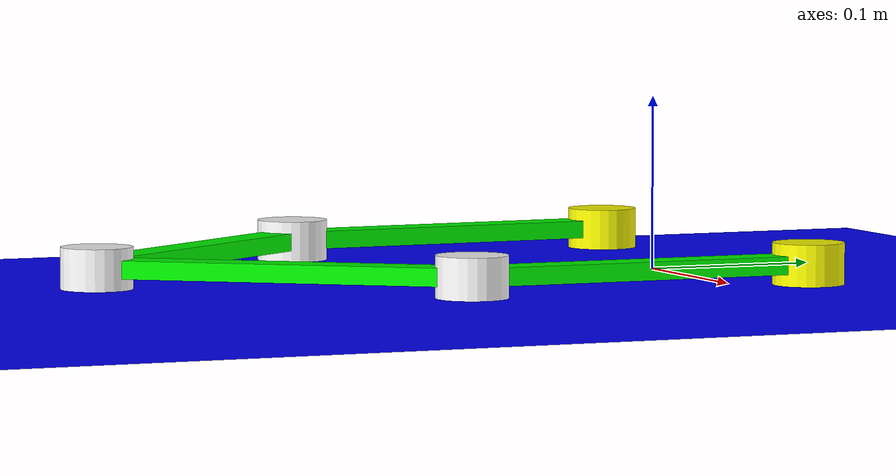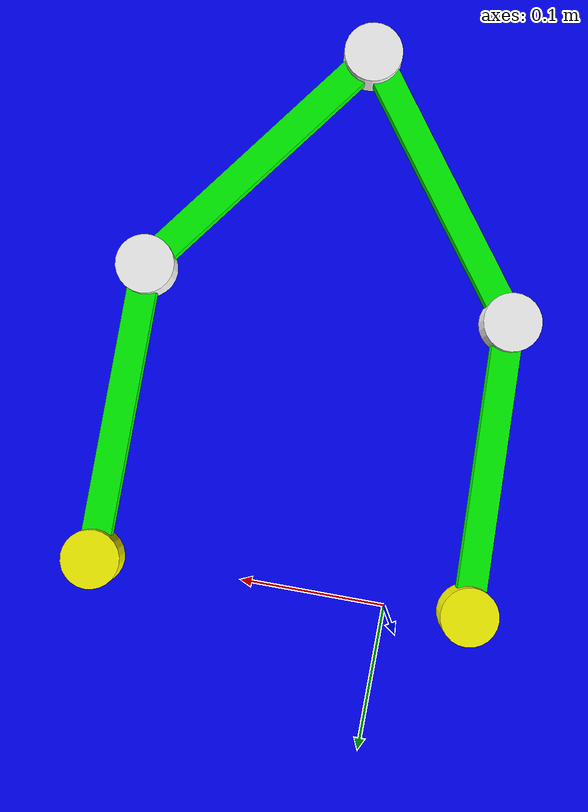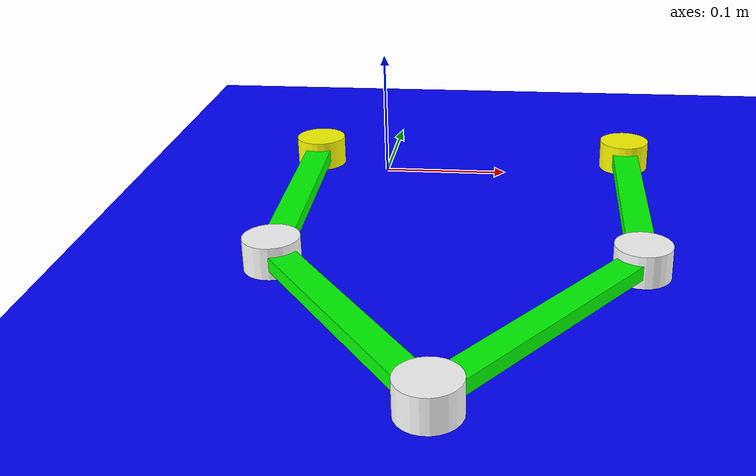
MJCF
<mujoco model="4_bar_mechanism_with_end_effector">
    <visual>
        <headlight ambient="0.5 0.5 0.5" />
    </visual>

    <asset>
        <material name="black" rgba="0 0 0 1" />
        <material name="green" rgba="0 1 0 1" />
        <material name="blue" rgba="0 0 1 1" />
        <material name="red" rgba="1 0 0 1" />
        <material name="yellow" rgba="1 1 0 1" />
        <material name="white" rgba="1 1 1 1" />
    </asset>

    <option gravity="0 0 -9.81" />

    <worldbody>
        <light diffuse=".5 .5 .5" pos="0 0 3" dir="0 0 -1"/>
        <geom type="plane" size="10 10 0.1" material="blue"/>

        <!-- First Active Joint -->
        <body name="active_joint_1" pos="0.2 0 0.02">
            <joint name="active_joint_1_hinge" type="hinge" axis="0 0 1" pos="0 0 0" />
            <geom type="cylinder" size="0.0198 0.0115" material="yellow" mass="0.065" />

            <!-- First Link -->
            <body name="link_1" pos="0 -0.1 0"  euler="0 0 -90">
                <geom type="box" size="0.1 0.01 0.005" material="green" mass="0.02" />

                <!-- First Passive Joint -->
                <body name="passive_joint_1" pos="0.1 0 0" euler="0 0 0">
                    <joint name="passive_joint_1_hinge" type="hinge" axis="0 0 1" pos="0 0 0" />
                    <geom type="cylinder" size="0.0198 0.0115" material="white" mass="0.065" />

                    <!-- Second Link -->
                    <body name="link_2" pos="0.0875 -0.065 0" euler="0 0 -37">
                        <geom type="box" size="0.1 0.01 0.005" material="green" mass="0.02" contype="0" conaffinity="0"/>
                        <!-- end effector-->
                        <body name="end_effector" pos="0.1 0 0">
                            <geom type="cylinder" size="0.0198 0.0115" material="white" mass="0.065" />

                            <body name="link_4" pos="-0.0275 -0.1 0" euler="0 0 74">
                                <geom type="box" size="0.1 0.01 0.005" material="green" mass="0.02" contype="0" conaffinity="0"/>

                                <!-- Second Passive Joint  -->
                                <body name="passive_joint_2" pos="-0.1 0 0" euler="0 0 0">
                                    <joint name="passive_joint_2_hinge" type="hinge" axis="0 0 1" pos="0 0 0" />
                                    <geom type="cylinder" size="0.0198 0.0115" material="white" mass="0.065" />

                                    <!-- Third Link  -->
                                    <body name="link_3" pos="-0.08 0.057 0" euler="0 0 -35">
                                        <geom type="box" size="0.1 0.01 0.005" material="green" mass="0.02" />

                                        <!-- Second Active Joint  -->
                                        <body name="active_joint_2" pos="-0.1 0 0">
                                            <joint name="active_joint_2_hinge" type="hinge" axis="0 0 1" pos="0 0 0" />
                                            <geom type="cylinder" size="0.0198 0.0115" material="yellow" mass="0.065" />
                                        </body>
                                    </body>
                                </body>
                            </body>
                        </body>
                    </body>
                </body>
            </body>
        </body>
    </worldbody>

    <actuator>
        <motor name="active_joint_1_motor" joint="active_joint_1_hinge" gear="100"/>
        <motor name="active_joint_2_motor" joint="active_joint_2_hinge" gear="100"/>
    </actuator>

    <equality>
        <connect name="kinematic_link2" active="true" body1="active_joint_2" anchor="0 0 0"/>
    </equality>

</mujoco>
